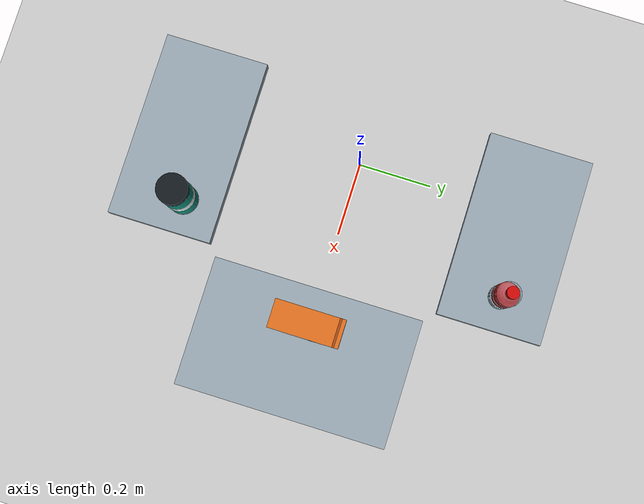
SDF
<?xml version='1.0' encoding='UTF-8'?>
<sdf version="1.6">
  <world name="handarm_ground_grasp">
    <gravity>0 0 -9.81</gravity>
    <physics name="ode" type="ode">
      <max_step_size>0.001</max_step_size>
      <real_time_update_rate>1000</real_time_update_rate>
      <ode>
        <solver>
          <type>quick</type>
          <iters>100</iters>
          <sor>1.3</sor>
        </solver>
        <constraints>
          <cfm>0.0</cfm>
          <erp>0.2</erp>
          <contact_max_correcting_vel>0.1</contact_max_correcting_vel>
          <contact_surface_layer>0.001</contact_surface_layer>
        </constraints>
      </ode>
    </physics>
    <include>
      <uri>model://ground_plane</uri>
      <pose>0 0 0 0 0 0</pose>
    </include>
    <include>
      <uri>model://sun</uri>
    </include>
    <model name="target_object">
      <static>false</static>
      <pose>0.24 -0.41 0.18433333333333329 0 0 0</pose>
      <link name="object_link">
        <inertial>
          <mass>0.27</mass>
          <inertia>
            <ixx>0.0008919999999999999</ixx>
            <iyy>0.0008919999999999999</iyy>
            <izz>0.000216</izz>
          </inertia>
        </inertial>
        <collision name="collision">
          <surface>
            <friction>
              <ode>
                <mu>1.5</mu>
                <mu2>1.5</mu2>
                <slip1>0.0</slip1>
                <slip2>0.0</slip2>
              </ode>
            </friction>
            <contact>
              <ode>
                <kp>1000000</kp>
                <kd>10</kd>
                <max_vel>0.1</max_vel>
                <min_depth>0.001</min_depth>
              </ode>
            </contact>
          </surface>
          <geometry>
            <cylinder>
              <radius>0.04</radius>
              <length>0.18666666666666665</length>
            </cylinder>
          </geometry>
        </collision>
        <sensor name="target_contact_sensor" type="contact">
          <always_on>true</always_on>
          <update_rate>100.0</update_rate>
          <contact>
            <collision>collision</collision>
          </contact>
          <plugin name="target_contact_reporter" filename="libgazebo_ros_bumper.so">
            <alwaysOn>true</alwaysOn>
            <updateRate>100.0</updateRate>
            <frameName>world</frameName>
            <bumperTopicName>/handarm_sim_demo/target_contacts</bumperTopicName>
          </plugin>
        </sensor>
        <visual name="body">
          <pose>0.0 0.0 -0.0097391304385815586 0.0 0.0 0.0</pose>
          <geometry>
            <cylinder>
              <radius>0.04</radius>
              <length>0.1671884057971014</length>
            </cylinder>
          </geometry>
          <material>
            <ambient>0.05 0.55 0.48 1</ambient>
            <diffuse>0.05 0.55 0.48 1</diffuse>
            <specular>0.3 0.3 0.3 1</specular>
          </material>
        </visual>
        <visual name="base_rim">
          <pose>0.0 0.0 -0.089275362280851048 0.0 0.0 0.0</pose>
          <geometry>
            <cylinder>
              <radius>0.0402</radius>
              <length>0.0064927536231884049</length>
            </cylinder>
          </geometry>
          <material>
            <ambient>0.72 0.75 0.78 1</ambient>
            <diffuse>0.72 0.75 0.78 1</diffuse>
            <specular>0.3 0.3 0.3 1</specular>
          </material>
        </visual>
        <visual name="screw_lid">
          <pose>0.0 0.0 0.08359420287092198 0.0 0.0 0.0</pose>
          <geometry>
            <cylinder>
              <radius>0.0402</radius>
              <length>0.019478260869565216</length>
            </cylinder>
          </geometry>
          <material>
            <ambient>0.08 0.10 0.12 1</ambient>
            <diffuse>0.08 0.10 0.12 1</diffuse>
            <specular>0.3 0.3 0.3 1</specular>
          </material>
        </visual>
        <visual name="steel_neck_band">
          <pose>0.0 0.0 0.07060869565390071 0.0 0.0 0.0</pose>
          <geometry>
            <cylinder>
              <radius>0.0402</radius>
              <length>0.0064927536231884049</length>
            </cylinder>
          </geometry>
          <material>
            <ambient>0.72 0.75 0.78 1</ambient>
            <diffuse>0.72 0.75 0.78 1</diffuse>
            <specular>0.3 0.3 0.3 1</specular>
          </material>
        </visual>
        <visual name="water_label">
          <pose>0.0 0.0 -0.012173913046241134 0.0 0.0 0.0</pose>
          <geometry>
            <cylinder>
              <radius>0.0402</radius>
              <length>0.039768115942028975</length>
            </cylinder>
          </geometry>
          <material>
            <ambient>0.83 0.94 0.92 1</ambient>
            <diffuse>0.83 0.94 0.92 1</diffuse>
            <specular>0.3 0.3 0.3 1</specular>
          </material>
        </visual>
      </link>
    </model>
    <model name="ground_object_left">
      <static>false</static>
      <pose>0.24 0.455 0.2045 0.0 0.0 0.0</pose>
      <link name="object_link">
        <inertial>
          <pose>0 0 -0.07988115909200791 0 0 0</pose><mass>0.11399999999999999</mass>
          <inertia>
            <ixx>0.00028070284729957666</ixx>
            <iyy>0.00028070284729957666</iyy>
            <izz>6.277999999999999e-05</izz>
          </inertia>
        </inertial>
        <collision name="collision">
          <pose>0 0 -0.0345 0 0 0</pose>
          <geometry>
            <cylinder>
              <length>0.158</length>
              <radius>0.032</radius>
            </cylinder>
          </geometry>
          <surface>
            <friction>
              <ode>
                <mu>1.2</mu>
                <mu2>1.2</mu2>
              </ode>
            </friction>
          </surface>
        </collision>
        <collision name="collision_1">
          <pose>0 0 0.0445 0 0 0</pose>
          <geometry>
            <sphere>
              <radius>0.032</radius>
            </sphere>
          </geometry>
          <surface>
            <friction>
              <ode>
                <mu>1.2</mu>
                <mu2>1.2</mu2>
              </ode>
            </friction>
          </surface>
        </collision>
        <collision name="collision_2">
          <pose>0 0 0.084 0 0 0</pose>
          <geometry>
            <cylinder>
              <length>0.033</length>
              <radius>0.014</radius>
            </cylinder>
          </geometry>
          <surface>
            <friction>
              <ode>
                <mu>1.2</mu>
                <mu2>1.2</mu2>
              </ode>
            </friction>
          </surface>
        </collision>
        <collision name="collision_3">
          <pose>0 0 0.107 0 0 0</pose>
          <geometry>
            <cylinder>
              <length>0.013</length>
              <radius>0.016</radius>
            </cylinder>
          </geometry>
          <surface>
            <friction>
              <ode>
                <mu>1.2</mu>
                <mu2>1.2</mu2>
              </ode>
            </friction>
          </surface>
        </collision>
        <visual name="clear_body">
          <pose>0 0 -0.0345 0 0 0</pose>
          <geometry>
            <cylinder>
              <length>0.158</length>
              <radius>0.032</radius>
            </cylinder>
          </geometry>
          <material>
            <ambient>0.65 0.82 0.9 0.42</ambient>
            <diffuse>0.65 0.82 0.9 0.42</diffuse>
          </material>
        </visual>
        <visual name="shoulder">
          <pose>0 0 0.0445 0 0 0</pose>
          <geometry>
            <sphere>
              <radius>0.032</radius>
            </sphere>
          </geometry>
          <material>
            <ambient>0.65 0.82 0.9 0.42</ambient>
            <diffuse>0.65 0.82 0.9 0.42</diffuse>
          </material>
        </visual>
        <visual name="neck">
          <pose>0 0 0.084 0 0 0</pose>
          <geometry>
            <cylinder>
              <length>0.033</length>
              <radius>0.014</radius>
            </cylinder>
          </geometry>
          <material>
            <ambient>0.65 0.82 0.9 0.42</ambient>
            <diffuse>0.65 0.82 0.9 0.42</diffuse>
          </material>
        </visual>
        <visual name="red_cap">
          <pose>0 0 0.107 0 0 0</pose>
          <geometry>
            <cylinder>
              <length>0.013</length>
              <radius>0.016</radius>
            </cylinder>
          </geometry>
          <material>
            <ambient>0.82 0.035 0.025 1</ambient>
            <diffuse>0.82 0.035 0.025 1</diffuse>
          </material>
        </visual>
        <visual name="red_label">
          <pose>0 0 -0.015 0 0 0</pose>
          <geometry>
            <cylinder>
              <length>0.054</length>
              <radius>0.0322</radius>
            </cylinder>
          </geometry>
          <material>
            <ambient>0.82 0.035 0.025 1</ambient>
            <diffuse>0.82 0.035 0.025 1</diffuse>
          </material>
        </visual>
        <visual name="white_label_band">
          <pose>0 0 -0.013 0 0 0</pose>
          <geometry>
            <cylinder>
              <length>0.018</length>
              <radius>0.0324</radius>
            </cylinder>
          </geometry>
          <material>
            <ambient>0.96 0.97 0.94 1</ambient>
            <diffuse>0.96 0.97 0.94 1</diffuse>
          </material>
        </visual>
        <visual name="body_rib_0">
          <pose>0 0 -0.099 0 0 0</pose>
          <geometry>
            <cylinder>
              <length>0.004</length>
              <radius>0.0322</radius>
            </cylinder>
          </geometry>
          <material>
            <ambient>0.64 0.83 0.9 0.65</ambient>
            <diffuse>0.64 0.83 0.9 0.65</diffuse>
          </material>
        </visual>
        <visual name="body_rib_1">
          <pose>0 0 -0.08 0 0 0</pose>
          <geometry>
            <cylinder>
              <length>0.004</length>
              <radius>0.0322</radius>
            </cylinder>
          </geometry>
          <material>
            <ambient>0.64 0.83 0.9 0.65</ambient>
            <diffuse>0.64 0.83 0.9 0.65</diffuse>
          </material>
        </visual>
        <visual name="body_rib_2">
          <pose>0 0 0.019 0 0 0</pose>
          <geometry>
            <cylinder>
              <length>0.004</length>
              <radius>0.0322</radius>
            </cylinder>
          </geometry>
          <material>
            <ambient>0.64 0.83 0.9 0.65</ambient>
            <diffuse>0.64 0.83 0.9 0.65</diffuse>
          </material>
        </visual>
        <visual name="body_rib_3">
          <pose>0 0 0.035 0 0 0</pose>
          <geometry>
            <cylinder>
              <length>0.004</length>
              <radius>0.0322</radius>
            </cylinder>
          </geometry>
          <material>
            <ambient>0.64 0.83 0.9 0.65</ambient>
            <diffuse>0.64 0.83 0.9 0.65</diffuse>
          </material>
        </visual>
      </link>
    </model>
    <model name="ground_object_right">
      <static>false</static>
      <pose>0.455 0 0.1555 0 1.5707963267948966 1.5707963267948966</pose>
      <link name="object_link">
        <inertial>
          <mass>0.1028</mass>
          <inertia>
            <ixx>0.00034798180740740745</ixx>
            <iyy>0.00033928664074074085</iyy>
            <izz>9.026696666666668e-05</izz>
          </inertia>
        </inertial>
        <collision name="collision">
          <pose>0 0 0 0 0 0</pose>
          <geometry>
            <box>
              <size>0.069 0.076 0.18666666666666668</size>
            </box>
          </geometry>
          <surface>
            <friction>
              <ode>
                <mu>1.2</mu>
                <mu2>1.2</mu2>
              </ode>
            </friction>
          </surface>
        </collision>
        <visual name="carton">
          <pose>0 0 0.0 0 0 0</pose>
          <geometry>
            <box>
              <size>0.069 0.076 0.18666666666666668</size>
            </box>
          </geometry>
          <material>
            <ambient>0.88 0.44 0.12 1</ambient>
            <diffuse>0.88 0.44 0.12 1</diffuse>
            <specular>0.25 0.25 0.25 1</specular>
          </material>
        </visual>
        <visual name="lid_seam">
          <pose>0 0 0.0798518518506672 0 0 0</pose>
          <geometry>
            <box>
              <size>0.069306666670112 0.07635764706 0.00622222222186672</size>
            </box>
          </geometry>
          <material>
            <ambient>0.66 0.28 0.06 1</ambient>
            <diffuse>0.66 0.28 0.06 1</diffuse>
            <specular>0.25 0.25 0.25 1</specular>
          </material>
        </visual>
        <visual name="front_label">
          <pose>0 -0.0382682353 0.00311111111146672 0 0 0</pose>
          <geometry>
            <box>
              <size>0.045999999997416 0.0004470588236 0.11407407402666721</size>
            </box>
          </geometry>
          <material>
            <ambient>0.97 0.94 0.86 1</ambient>
            <diffuse>0.97 0.94 0.86 1</diffuse>
            <specular>0.25 0.25 0.25 1</specular>
          </material>
        </visual>
        <visual name="label_stripe">
          <pose>0 -0.03844705882 0.0238518518506672 0 0 0</pose>
          <geometry>
            <box>
              <size>0.045999999997416 0.000625882353 0.020740740735999998</size>
            </box>
          </geometry>
          <material>
            <ambient>0.12 0.38 0.33 1</ambient>
            <diffuse>0.12 0.38 0.33 1</diffuse>
            <specular>0.25 0.25 0.25 1</specular>
          </material>
        </visual>
        <visual name="side_label">
          <pose>0.034730000002584 0 0.00311111111146672 0 0 0</pose>
          <geometry>
            <box>
              <size>0.00038333333329888 0.04828235294 0.11407407402666721</size>
            </box>
          </geometry>
          <material>
            <ambient>0.97 0.94 0.86 1</ambient>
            <diffuse>0.97 0.94 0.86 1</diffuse>
            <specular>0.25 0.25 0.25 1</specular>
          </material>
        </visual>
      </link>
    </model>
    <scene>
      <ambient>0.5 0.5 0.5 1</ambient>
      <background>0.7 0.7 0.7 1</background>
    </scene>
    <gui fullscreen="0">
      <camera name="user_camera">
        <pose>1.6 -1.05 1.45 0 0.615737453 2.480549485</pose>
        <view_controller>orbit</view_controller>
        <projection_type>perspective</projection_type>
      </camera>
      <plugin name="handarm_gui_render_rate_limiter" filename="libhandarm_gui_render_rate_limiter_plugin.so">
        <renderRateHz>15.0</renderRateHz>
      </plugin>
    </gui>
    <model name="work_table">
      <static>true</static>
      <pose>0.53 0 0.1025 0 0 0</pose>
      <link name="table_link">
        <collision name="collision_0">
          <pose>0 0 0 0 0 0</pose>
          <geometry>
            <box>
              <size>0.34 0.56 0.035</size>
            </box>
          </geometry>
          <surface>
            <friction>
              <ode>
                <mu>1.0</mu>
                <mu2>1.0</mu2>
              </ode>
            </friction>
          </surface>
        </collision>
        <visual name="surface_0">
          <pose>0 0 0 0 0 0</pose>
          <geometry>
            <box>
              <size>0.34 0.56 0.035</size>
            </box>
          </geometry>
          <material>
            <ambient>0.60 0.66 0.70 1</ambient>
            <diffuse>0.60 0.66 0.70 1</diffuse>
          </material>
        </visual>
        <collision name="collision_1">
          <pose>-0.125 -0.235 -0.06 0 0 0</pose>
          <geometry>
            <box>
              <size>0.03 0.03 0.085</size>
            </box>
          </geometry>
          <surface>
            <friction>
              <ode>
                <mu>1.0</mu>
                <mu2>1.0</mu2>
              </ode>
            </friction>
          </surface>
        </collision>
        <visual name="surface_1">
          <pose>-0.125 -0.235 -0.06 0 0 0</pose>
          <geometry>
            <box>
              <size>0.03 0.03 0.085</size>
            </box>
          </geometry>
          <material>
            <ambient>0.14 0.18 0.21 1</ambient>
            <diffuse>0.14 0.18 0.21 1</diffuse>
          </material>
        </visual>
        <collision name="collision_2">
          <pose>-0.125 0.235 -0.06 0 0 0</pose>
          <geometry>
            <box>
              <size>0.03 0.03 0.085</size>
            </box>
          </geometry>
          <surface>
            <friction>
              <ode>
                <mu>1.0</mu>
                <mu2>1.0</mu2>
              </ode>
            </friction>
          </surface>
        </collision>
        <visual name="surface_2">
          <pose>-0.125 0.235 -0.06 0 0 0</pose>
          <geometry>
            <box>
              <size>0.03 0.03 0.085</size>
            </box>
          </geometry>
          <material>
            <ambient>0.14 0.18 0.21 1</ambient>
            <diffuse>0.14 0.18 0.21 1</diffuse>
          </material>
        </visual>
        <collision name="collision_3">
          <pose>0.125 -0.235 -0.06 0 0 0</pose>
          <geometry>
            <box>
              <size>0.03 0.03 0.085</size>
            </box>
          </geometry>
          <surface>
            <friction>
              <ode>
                <mu>1.0</mu>
                <mu2>1.0</mu2>
              </ode>
            </friction>
          </surface>
        </collision>
        <visual name="surface_3">
          <pose>0.125 -0.235 -0.06 0 0 0</pose>
          <geometry>
            <box>
              <size>0.03 0.03 0.085</size>
            </box>
          </geometry>
          <material>
            <ambient>0.14 0.18 0.21 1</ambient>
            <diffuse>0.14 0.18 0.21 1</diffuse>
          </material>
        </visual>
        <collision name="collision_4">
          <pose>0.125 0.235 -0.06 0 0 0</pose>
          <geometry>
            <box>
              <size>0.03 0.03 0.085</size>
            </box>
          </geometry>
          <surface>
            <friction>
              <ode>
                <mu>1.0</mu>
                <mu2>1.0</mu2>
              </ode>
            </friction>
          </surface>
        </collision>
        <visual name="surface_4">
          <pose>0.125 0.235 -0.06 0 0 0</pose>
          <geometry>
            <box>
              <size>0.03 0.03 0.085</size>
            </box>
          </geometry>
          <material>
            <ambient>0.14 0.18 0.21 1</ambient>
            <diffuse>0.14 0.18 0.21 1</diffuse>
          </material>
        </visual>
      </link>
    </model>
    <model name="left_work_table">
      <static>true</static>
      <pose>0.08 -0.45 0.0725 0 0 1.570796327</pose>
      <link name="table_link">
        <collision name="collision_0">
          <pose>0 0 0 0 0 0</pose>
          <geometry>
            <box>
              <size>0.28 0.5 0.035</size>
            </box>
          </geometry>
          <surface>
            <friction>
              <ode>
                <mu>1.0</mu>
                <mu2>1.0</mu2>
              </ode>
            </friction>
          </surface>
        </collision>
        <visual name="surface_0">
          <pose>0 0 0 0 0 0</pose>
          <geometry>
            <box>
              <size>0.28 0.5 0.035</size>
            </box>
          </geometry>
          <material>
            <ambient>0.60 0.66 0.70 1</ambient>
            <diffuse>0.60 0.66 0.70 1</diffuse>
          </material>
        </visual>
        <collision name="collision_1">
          <pose>-0.095 -0.205 -0.045 0 0 0</pose>
          <geometry>
            <box>
              <size>0.03 0.03 0.055</size>
            </box>
          </geometry>
          <surface>
            <friction>
              <ode>
                <mu>1.0</mu>
                <mu2>1.0</mu2>
              </ode>
            </friction>
          </surface>
        </collision>
        <visual name="surface_1">
          <pose>-0.095 -0.205 -0.045 0 0 0</pose>
          <geometry>
            <box>
              <size>0.03 0.03 0.055</size>
            </box>
          </geometry>
          <material>
            <ambient>0.14 0.18 0.21 1</ambient>
            <diffuse>0.14 0.18 0.21 1</diffuse>
          </material>
        </visual>
        <collision name="collision_2">
          <pose>-0.095 0.205 -0.045 0 0 0</pose>
          <geometry>
            <box>
              <size>0.03 0.03 0.055</size>
            </box>
          </geometry>
          <surface>
            <friction>
              <ode>
                <mu>1.0</mu>
                <mu2>1.0</mu2>
              </ode>
            </friction>
          </surface>
        </collision>
        <visual name="surface_2">
          <pose>-0.095 0.205 -0.045 0 0 0</pose>
          <geometry>
            <box>
              <size>0.03 0.03 0.055</size>
            </box>
          </geometry>
          <material>
            <ambient>0.14 0.18 0.21 1</ambient>
            <diffuse>0.14 0.18 0.21 1</diffuse>
          </material>
        </visual>
        <collision name="collision_3">
          <pose>0.095 -0.205 -0.045 0 0 0</pose>
          <geometry>
            <box>
              <size>0.03 0.03 0.055</size>
            </box>
          </geometry>
          <surface>
            <friction>
              <ode>
                <mu>1.0</mu>
                <mu2>1.0</mu2>
              </ode>
            </friction>
          </surface>
        </collision>
        <visual name="surface_3">
          <pose>0.095 -0.205 -0.045 0 0 0</pose>
          <geometry>
            <box>
              <size>0.03 0.03 0.055</size>
            </box>
          </geometry>
          <material>
            <ambient>0.14 0.18 0.21 1</ambient>
            <diffuse>0.14 0.18 0.21 1</diffuse>
          </material>
        </visual>
        <collision name="collision_4">
          <pose>0.095 0.205 -0.045 0 0 0</pose>
          <geometry>
            <box>
              <size>0.03 0.03 0.055</size>
            </box>
          </geometry>
          <surface>
            <friction>
              <ode>
                <mu>1.0</mu>
                <mu2>1.0</mu2>
              </ode>
            </friction>
          </surface>
        </collision>
        <visual name="surface_4">
          <pose>0.095 0.205 -0.045 0 0 0</pose>
          <geometry>
            <box>
              <size>0.03 0.03 0.055</size>
            </box>
          </geometry>
          <material>
            <ambient>0.14 0.18 0.21 1</ambient>
            <diffuse>0.14 0.18 0.21 1</diffuse>
          </material>
        </visual>
      </link>
    </model>
    <model name="right_work_table">
      <static>true</static>
      <pose>0.08 0.45 0.0725 0 0 1.570796327</pose>
      <link name="table_link">
        <collision name="collision_0">
          <pose>0 0 0 0 0 0</pose>
          <geometry>
            <box>
              <size>0.28 0.5 0.035</size>
            </box>
          </geometry>
          <surface>
            <friction>
              <ode>
                <mu>1.0</mu>
                <mu2>1.0</mu2>
              </ode>
            </friction>
          </surface>
        </collision>
        <visual name="surface_0">
          <pose>0 0 0 0 0 0</pose>
          <geometry>
            <box>
              <size>0.28 0.5 0.035</size>
            </box>
          </geometry>
          <material>
            <ambient>0.60 0.66 0.70 1</ambient>
            <diffuse>0.60 0.66 0.70 1</diffuse>
          </material>
        </visual>
        <collision name="collision_1">
          <pose>-0.095 -0.205 -0.045 0 0 0</pose>
          <geometry>
            <box>
              <size>0.03 0.03 0.055</size>
            </box>
          </geometry>
          <surface>
            <friction>
              <ode>
                <mu>1.0</mu>
                <mu2>1.0</mu2>
              </ode>
            </friction>
          </surface>
        </collision>
        <visual name="surface_1">
          <pose>-0.095 -0.205 -0.045 0 0 0</pose>
          <geometry>
            <box>
              <size>0.03 0.03 0.055</size>
            </box>
          </geometry>
          <material>
            <ambient>0.14 0.18 0.21 1</ambient>
            <diffuse>0.14 0.18 0.21 1</diffuse>
          </material>
        </visual>
        <collision name="collision_2">
          <pose>-0.095 0.205 -0.045 0 0 0</pose>
          <geometry>
            <box>
              <size>0.03 0.03 0.055</size>
            </box>
          </geometry>
          <surface>
            <friction>
              <ode>
                <mu>1.0</mu>
                <mu2>1.0</mu2>
              </ode>
            </friction>
          </surface>
        </collision>
        <visual name="surface_2">
          <pose>-0.095 0.205 -0.045 0 0 0</pose>
          <geometry>
            <box>
              <size>0.03 0.03 0.055</size>
            </box>
          </geometry>
          <material>
            <ambient>0.14 0.18 0.21 1</ambient>
            <diffuse>0.14 0.18 0.21 1</diffuse>
          </material>
        </visual>
        <collision name="collision_3">
          <pose>0.095 -0.205 -0.045 0 0 0</pose>
          <geometry>
            <box>
              <size>0.03 0.03 0.055</size>
            </box>
          </geometry>
          <surface>
            <friction>
              <ode>
                <mu>1.0</mu>
                <mu2>1.0</mu2>
              </ode>
            </friction>
          </surface>
        </collision>
        <visual name="surface_3">
          <pose>0.095 -0.205 -0.045 0 0 0</pose>
          <geometry>
            <box>
              <size>0.03 0.03 0.055</size>
            </box>
          </geometry>
          <material>
            <ambient>0.14 0.18 0.21 1</ambient>
            <diffuse>0.14 0.18 0.21 1</diffuse>
          </material>
        </visual>
        <collision name="collision_4">
          <pose>0.095 0.205 -0.045 0 0 0</pose>
          <geometry>
            <box>
              <size>0.03 0.03 0.055</size>
            </box>
          </geometry>
          <surface>
            <friction>
              <ode>
                <mu>1.0</mu>
                <mu2>1.0</mu2>
              </ode>
            </friction>
          </surface>
        </collision>
        <visual name="surface_4">
          <pose>0.095 0.205 -0.045 0 0 0</pose>
          <geometry>
            <box>
              <size>0.03 0.03 0.055</size>
            </box>
          </geometry>
          <material>
            <ambient>0.14 0.18 0.21 1</ambient>
            <diffuse>0.14 0.18 0.21 1</diffuse>
          </material>
        </visual>
      </link>
    </model>
    </world>
</sdf>
